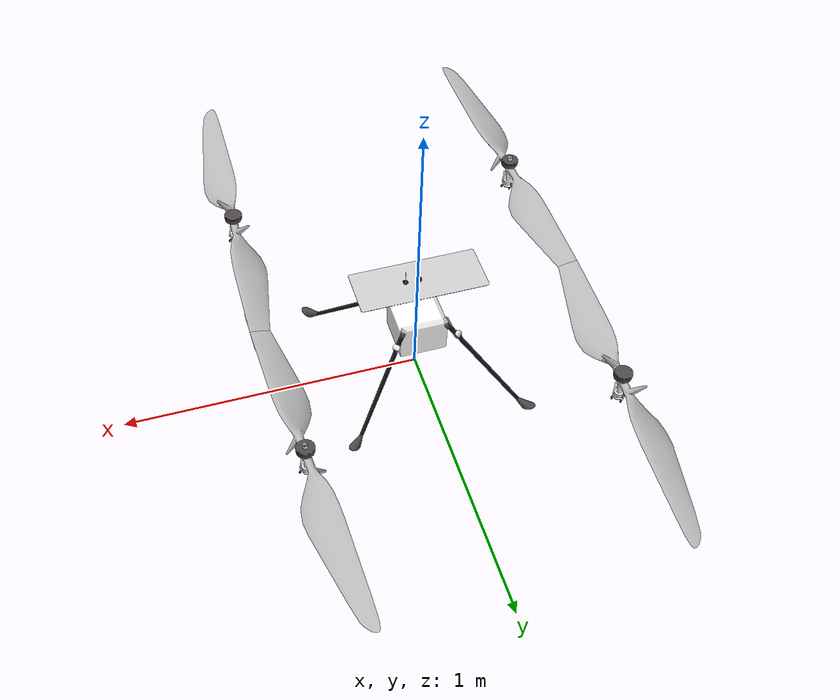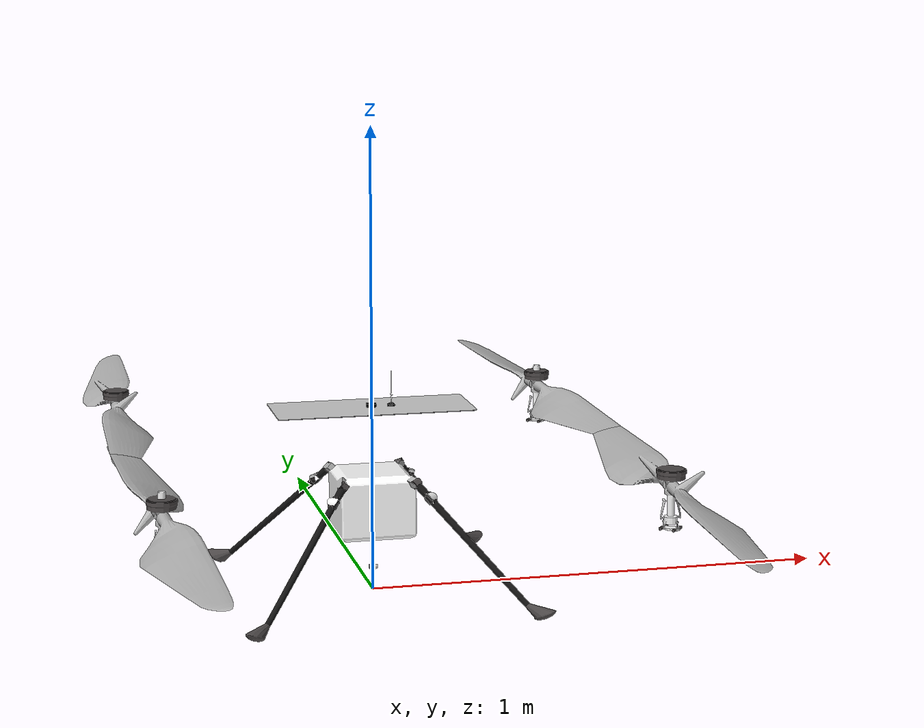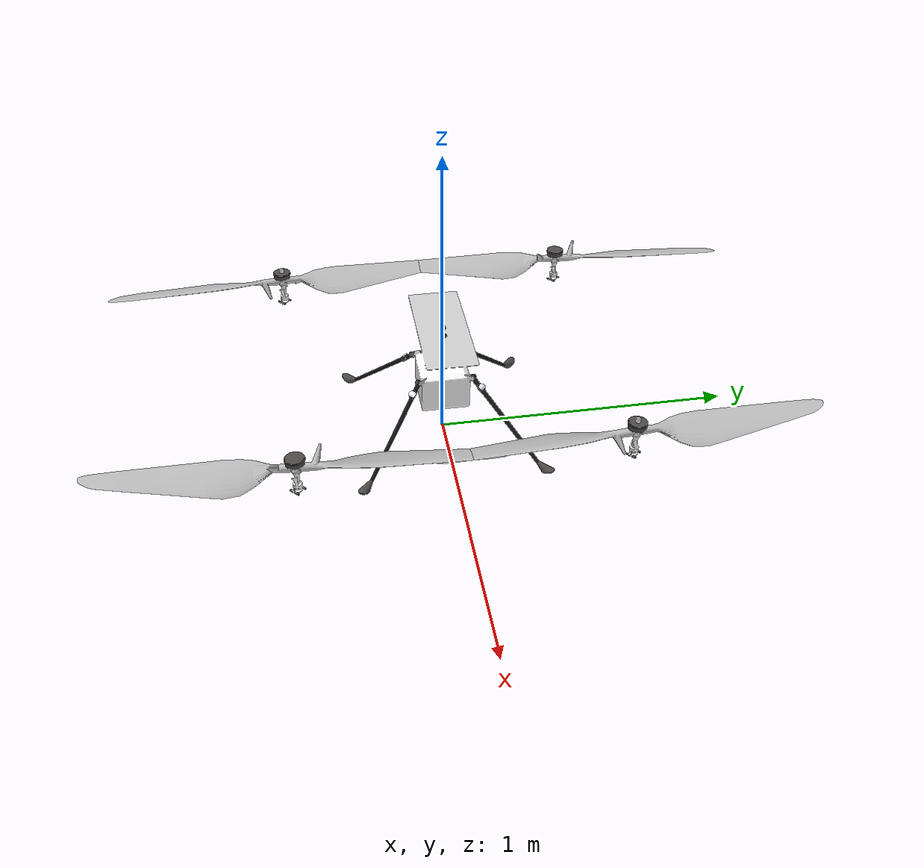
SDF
<?xml version='1.0'?>
<sdf version="1.6" >
  <model name="ingenuity_with_camera">
    <include>
      <uri>model://ingenuity_base</uri>
    </include>

    <link name="cam_link">
      <pose>0 0 -0.1 0 0 0 </pose>
      <inertial>
        <mass>0.01</mass>
        <inertia>
          <ixx>0.001</ixx>
          <iyy>0.001</iyy>
          <izz>0.001</izz>
        </inertia>
      </inertial>
      <visual name='cam_link'>
    	<pose>0 0 0.15 0 1.57 0</pose>
      <!-- 0.15 pare afi ok dar trebuie de vazut-->
    	<geometry>
    		<cylinder>
    			<radius>.005</radius>
    			<length>.018</length>
    		</cylinder>
    	</geometry>
    </visual>
    <sensor name="cam" type="camera" >
      <pose>0 0 0.15 0 1.57 0</pose>
      <camera>
        <horizontal_fov>1.2</horizontal_fov>
        <image>
          <width>640</width>
          <height>480</height>
        </image>
        <clip>
          <near>0.1</near>
          <far>1000</far>
        </clip>
      </camera>
      <always_on>1</always_on>
      <update_rate>30</update_rate>
      <visualize>true</visualize>
      <plugin name="camera_controller" filename="libgazebo_ros_camera.so">
        <always_on>true</always_on>
        <update_rate>30</update_rate>
        <cameraName>webcam</cameraName>
        <imageTopicName>image_raw</imageTopicName>
        <cameraInfoTopicName>camera_info</cameraInfoTopicName>
        <frameName>camera_link</frameName>
      </plugin>
    </sensor>
    </link>
    <joint name="camera_mount" type="fixed">
      <child>cam_link</child>
      <parent>ingenuity::base_link</parent>
      <axis>
        <xyz>0 0 1</xyz>
        <limit>
          <upper>0</upper>
          <lower>0</lower>
        </limit>
      </axis>
    </joint>

<!-- AM ADAUGAT -->

    <joint name="d435_joint" type="fixed">
      <child>d435::base_link</child>
      <parent>ingenuity::base_link</parent>
      <axis>
        <xyz>0 0 0</xyz>
        <limit>
          <upper>0</upper>
          <lower>0</lower>
        </limit>
      </axis>
    </joint>

<!-- PANA AICI -->
    <!-- plugins -->
    <plugin name="rotor_0_blade_1" filename="libLiftDragPlugin.so">
      <a0>0.3</a0>
      <alpha_stall>1.4</alpha_stall>
      <cla>4.2500</cla>
      <cda>0.10</cda>
      <cma>0.00</cma>
      <cla_stall>-0.025</cla_stall>
      <cda_stall>0.0</cda_stall>
      <cma_stall>0.0</cma_stall>
      <area>0.002</area>
      <air_density>1.2041</air_density>
      <cp>0.084 0 0</cp>
      <forward>0 1 0</forward>
      <upward>0 0 1</upward>
      <link_name>ingenuity::rotor_0</link_name>
    </plugin>
    <plugin name="rotor_0_blade_2" filename="libLiftDragPlugin.so">
      <a0>0.3</a0>
      <alpha_stall>1.4</alpha_stall>
      <cla>4.2500</cla>
      <cda>0.10</cda>
      <cma>0.00</cma>
      <cla_stall>-0.025</cla_stall>
      <cda_stall>0.0</cda_stall>
      <cma_stall>0.0</cma_stall>
      <area>0.002</area>
      <air_density>1.2041</air_density>
      <cp>-0.084 0 0</cp>
      <forward>0 -1 0</forward>
      <upward>0 0 1</upward>
      <link_name>ingenuity::rotor_0</link_name>
    </plugin>

    <plugin name="rotor_1_blade_1" filename="libLiftDragPlugin.so">
      <a0>0.3</a0>
      <alpha_stall>1.4</alpha_stall>
      <cla>4.2500</cla>
      <cda>0.10</cda>
      <cma>0.00</cma>
      <cla_stall>-0.025</cla_stall>
      <cda_stall>0.0</cda_stall>
      <cma_stall>0.0</cma_stall>
      <area>0.002</area>
      <air_density>1.2041</air_density>
      <cp>0.084 0 0</cp>
      <forward>0 1 0</forward>
      <upward>0 0 1</upward>
      <link_name>ingenuity::rotor_1</link_name>
    </plugin>
    <plugin name="rotor_1_blade_2" filename="libLiftDragPlugin.so">
      <a0>0.3</a0>
      <alpha_stall>1.4</alpha_stall>
      <cla>4.2500</cla>
      <cda>0.10</cda>
      <cma>0.00</cma>
      <cla_stall>-0.025</cla_stall>
      <cda_stall>0.0</cda_stall>
      <cma_stall>0.0</cma_stall>
      <area>0.002</area>
      <air_density>1.2041</air_density>
      <cp>-0.084 0 0</cp>
      <forward>0 -1 0</forward>
      <upward>0 0 1</upward>
      <link_name>ingenuity::rotor_1</link_name>
    </plugin>

    <plugin name="rotor_2_blade_1" filename="libLiftDragPlugin.so">
      <a0>0.3</a0>
      <alpha_stall>1.4</alpha_stall>
      <cla>4.2500</cla>
      <cda>0.10</cda>
      <cma>0.00</cma>
      <cla_stall>-0.025</cla_stall>
      <cda_stall>0.0</cda_stall>
      <cma_stall>0.0</cma_stall>
      <area>0.002</area>
      <air_density>1.2041</air_density>
      <cp>0.084 0 0</cp>
      <forward>0 -1 0</forward>
      <upward>0 0 1</upward>
      <link_name>ingenuity::rotor_2</link_name>
    </plugin>
    <plugin name="rotor_2_blade_2" filename="libLiftDragPlugin.so">
      <a0>0.3</a0>
      <alpha_stall>1.4</alpha_stall>
      <cla>4.2500</cla>
      <cda>0.10</cda>
      <cma>0.00</cma>
      <cla_stall>-0.025</cla_stall>
      <cda_stall>0.0</cda_stall>
      <cma_stall>0.0</cma_stall>
      <area>0.002</area>
      <air_density>1.2041</air_density>
      <cp>-0.084 0 0</cp>
      <forward>0 1 0</forward>
      <upward>0 0 1</upward>
      <link_name>ingenuity::rotor_2</link_name>
    </plugin>

    <plugin name="rotor_3_blade_1" filename="libLiftDragPlugin.so">
      <a0>0.3</a0>
      <alpha_stall>1.4</alpha_stall>
      <cla>4.2500</cla>
      <cda>0.10</cda>
      <cma>0.00</cma>
      <cla_stall>-0.025</cla_stall>
      <cda_stall>0.0</cda_stall>
      <cma_stall>0.0</cma_stall>
      <area>0.002</area>
      <air_density>1.2041</air_density>
      <cp>0.084 0 0</cp>
      <forward>0 -1 0</forward>
      <upward>0 0 1</upward>
      <link_name>ingenuity::rotor_3</link_name>
    </plugin>
    <plugin name="rotor_3_blade_2" filename="libLiftDragPlugin.so">
      <a0>0.3</a0>
      <alpha_stall>1.4</alpha_stall>
      <cla>4.2500</cla>
      <cda>0.10</cda>
      <cma>0.00</cma>
      <cla_stall>-0.025</cla_stall>
      <cda_stall>0.0</cda_stall>
      <cma_stall>0.0</cma_stall>
      <area>0.002</area>
      <air_density>1.2041</air_density>
      <cp>-0.084 0 0</cp>
      <forward>0 1 0</forward>
      <upward>0 0 1</upward>
      <link_name>ingenuity::rotor_3</link_name>
    </plugin>
    <plugin name="arducopter_plugin" filename="libArduPilotPlugin.so">
      <fdm_addr>127.0.0.1</fdm_addr>
      <fdm_port_in>9002</fdm_port_in>
      <fdm_port_out>9003</fdm_port_out>
      <!--
          Require by APM :
          Only change model and gazebo from XYZ to XY-Z coordinates
      -->
      <modelXYZToAirplaneXForwardZDown>0 0 0 3.141593 0 0</modelXYZToAirplaneXForwardZDown>
      <gazeboXYZToNED>0 0 0 3.141593 0 0</gazeboXYZToNED>
      <imuName>ingenuity::ingenuity/imu_link::imu_sensor</imuName>
      <connectionTimeoutMaxCount>5</connectionTimeoutMaxCount>
      <control channel="0">
      <!--
          incoming control command [0, 1]
          so offset it by 0 to get [0, 1]
          and divide max target by 1.
          offset = 0
          multiplier = 838 max rpm / 1 = 838
        -->
        <type>VELOCITY</type>
        <offset>0</offset>
        <p_gain>0.20</p_gain>
        <i_gain>0</i_gain>
        <d_gain>0</d_gain>
        <i_max>0</i_max>
        <i_min>0</i_min>
        <cmd_max>2.5</cmd_max>
        <cmd_min>-2.5</cmd_min>
        <jointName>ingenuity::rotor_0_joint</jointName>
        <multiplier>838</multiplier>
        <controlVelocitySlowdownSim>1</controlVelocitySlowdownSim>
      </control>
      <control channel="1">
        <type>VELOCITY</type>
        <offset>0</offset>
        <p_gain>0.20</p_gain>
        <i_gain>0</i_gain>
        <d_gain>0</d_gain>
        <i_max>0</i_max>
        <i_min>0</i_min>
        <cmd_max>2.5</cmd_max>
        <cmd_min>-2.5</cmd_min>
        <jointName>ingenuity::rotor_1_joint</jointName>
        <multiplier>838</multiplier>
        <controlVelocitySlowdownSim>1</controlVelocitySlowdownSim>
      </control>
      <control channel="2">
        <type>VELOCITY</type>
        <offset>0</offset>
        <p_gain>0.20</p_gain>
        <i_gain>0</i_gain>
        <d_gain>0</d_gain>
        <i_max>0</i_max>
        <i_min>0</i_min>
        <cmd_max>2.5</cmd_max>
        <cmd_min>-2.5</cmd_min>
        <jointName>ingenuity::rotor_2_joint</jointName>
        <multiplier>-838</multiplier>
        <controlVelocitySlowdownSim>1</controlVelocitySlowdownSim>
      </control>
      <control channel="3">
        <type>VELOCITY</type>
        <offset>0</offset>
        <p_gain>0.20</p_gain>
        <i_gain>0</i_gain>
        <d_gain>0</d_gain>
        <i_max>0</i_max>
        <i_min>0</i_min>
        <cmd_max>2.5</cmd_max>
        <cmd_min>-2.5</cmd_min>
        <jointName>ingenuity::rotor_3_joint</jointName>
        <multiplier>-838</multiplier>
        <controlVelocitySlowdownSim>1</controlVelocitySlowdownSim>
      </control>
    </plugin>

  </model>
</sdf>

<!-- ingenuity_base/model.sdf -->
<sdf version='1.6'>
  <model name='ingenuity'>
    <pose>0 0 0.194 0 0 0</pose>

    <link name='base_link'>
      <velocity_decay>
        <linear>0.0</linear>
        <angular>0.0</angular>
      </velocity_decay>

      <inertial>
        <pose>0 0 0 0 0 0</pose>
        <mass>1.8</mass>
        <inertia>
          <ixx>0.008</ixx>
          <ixy>0</ixy>
          <ixz>0</ixz>
          <iyy>0.015</iyy>
          <iyz>0</iyz>
          <izz>0.017</izz>
        </inertia>
      </inertial>

      <collision name='base_link_collision_fl'>
        <pose>0.295 0.295 -0.169 0 0 0</pose>
        <geometry>
          <box>
            <size>0.05 0.05 0.05</size>
          </box>
        </geometry>
        <surface>
          <contact>
            <ode>
              <max_vel>100.0</max_vel>
              <min_depth>0.001</min_depth>
            </ode>
          </contact>
          <friction>
            <ode>
              <mu>1.0</mu>
              <mu2>1.0</mu2>
            </ode>
          </friction>
        </surface>
      </collision>

      <collision name='base_link_collision_fr'>
        <pose>0.295 -0.295 -0.169 0 0 0</pose>
        <geometry>
          <box>
            <size>0.05 0.05 0.05</size>
          </box>
        </geometry>
        <surface>
          <contact>
            <ode>
              <max_vel>100.0</max_vel>
              <min_depth>0.001</min_depth>
            </ode>
          </contact>
          <friction>
            <ode>
              <mu>1.0</mu>
              <mu2>1.0</mu2>
            </ode>
          </friction>
        </surface>
      </collision>

      <collision name='base_link_collision_br'>
        <pose>-0.295 -0.295 -0.169 0 0 0</pose>
        <geometry>
          <box>
            <size>0.05 0.05 0.05</size>
          </box>
        </geometry>
        <surface>
          <contact>
            <ode>
              <max_vel>100.0</max_vel>
              <min_depth>0.001</min_depth>
            </ode>
          </contact>
          <friction>
            <ode>
              <mu>1.0</mu>
              <mu2>1.0</mu2>
            </ode>
          </friction>
        </surface>
      </collision>

      <collision name='base_link_collision_bl'>
        <pose>-0.295 0.295 -0.169 0 0 0</pose>
        <geometry>
          <box>
            <size>0.05 0.05 0.05</size>
          </box>
        </geometry>
        <surface>
          <contact>
            <ode>
              <max_vel>100.0</max_vel>
              <min_depth>0.001</min_depth>
            </ode>
          </contact>
          <friction>
            <ode>
              <mu>1.0</mu>
              <mu2>1.0</mu2>
            </ode>
          </friction>
        </surface>
      </collision>

      <visual name='base_link_visual'>
        <geometry>
          <mesh>
            <uri>model://ingenuity_base/meshes/ingenuity.dae</uri>
          </mesh>
        </geometry>

      </visual>

    </link>
    <link name='ingenuity/ground_truth/odometry_sensorgt_link'>
      <pose>0 0 0 0 -0 0</pose>
      <inertial>
        <pose>0 0 0 0 -0 0</pose>
        <mass>0.15</mass>
        <inertia>
          <ixx>0.0001</ixx>
          <ixy>0</ixy>
          <ixz>0</ixz>
          <iyy>0.0002</iyy>
          <iyz>0</iyz>
          <izz>0.0002</izz>
        </inertia>
      </inertial>
    </link>
    <joint name='ingenuity/ground_truth/odometry_sensorgt_joint' type='revolute'>
      <child>ingenuity/ground_truth/odometry_sensorgt_link</child>
      <parent>base_link</parent>
      <axis>
        <xyz>0 0 1</xyz>
        <limit>
          <lower>0</lower>
          <upper>0</upper>
          <effort>0</effort>
          <velocity>0</velocity>
        </limit>
        <dynamics>
          <damping>1.0</damping>
        </dynamics>
        <use_parent_model_frame>1</use_parent_model_frame>
      </axis>
      <physics>
        <ode>
          <implicit_spring_damper>1</implicit_spring_damper>
        </ode>
      </physics>
    </joint>
    <link name='ingenuity/imu_link'>
      <inertial>
        <pose>0 0 0 0 0 0</pose>
        <mass>0.15</mass>
        <inertia>
          <ixx>0.00001</ixx>
          <ixy>0</ixy>
          <ixz>0</ixz>
          <iyy>0.00002</iyy>
          <iyz>0</iyz>
          <izz>0.00002</izz>
        </inertia>
      </inertial>
      <sensor name="imu_sensor" type="imu">
        <pose>0 0 0 3.141593 0 0</pose>
        <always_on>1</always_on>
        <update_rate>1000.0</update_rate>
      </sensor>
    </link>
    <joint name='ingenuity/imu_joint' type='revolute'>
      <child>ingenuity/imu_link</child>
      <parent>base_link</parent>
      <axis>
        <xyz>0 0 1</xyz>
        <limit>
          <lower>0</lower>
          <upper>0</upper>
          <effort>0</effort>
          <velocity>0</velocity>
        </limit>
        <dynamics>
          <damping>1.0</damping>
        </dynamics>
        <use_parent_model_frame>1</use_parent_model_frame>
      </axis>
      <physics>
        <ode>
          <implicit_spring_damper>1</implicit_spring_damper>
        </ode>
      </physics>
    </joint>
    <link name='rotor_0'>
      <pose>0.5 -0.5 0.16 0 -0 0</pose>
      <inertial>
        <pose>0 0 0 0 -0 0</pose>
        <mass>0.025</mass>
        <!-- lasam asa pana cand-->
        <inertia>
          <ixx>9.75e-06</ixx>
          <ixy>0</ixy>
          <ixz>0</ixz>
          <iyy>0.000166704</iyy>
          <iyz>0</iyz>
          <izz>0.000167604</izz>
          <!--trebuie de calculat-->
        </inertia>
      </inertial>
      <collision name='rotor_0_collision'>
        <pose>0 0 0 0 -0 0</pose>
        <geometry>
          <cylinder>
            <length>0.1</length>
            <radius>0.6</radius>
          </cylinder>
        </geometry>
        <surface>
          <contact>
            <ode/>
          </contact>
          <friction>
            <ode/>
          </friction>
        </surface>
      </collision>
      <visual name='rotor_0_visual'>
        <pose>0 0 0 0 -0 0</pose>
        <geometry>
          <mesh>
            <scale>1 1 1</scale>
            <uri>model://ingenuity_base/meshes/ingenuity_prop_ccw.dae</uri>
          </mesh>
        </geometry>
      </visual>
      <gravity>1</gravity>
      <velocity_decay/>
      <self_collide>0</self_collide>
    </link>
    <joint name='rotor_0_joint' type='revolute'>
      <child>rotor_0</child>
      <parent>base_link</parent>
      <axis>
        <xyz>0 0 1</xyz>
        <limit>
          <lower>-1e+16</lower>
          <upper>1e+16</upper>
        </limit>
        <dynamics>
          <damping>0.004</damping>
        </dynamics>
        <use_parent_model_frame>1</use_parent_model_frame>
      </axis>
      <physics>
        <ode>
          <implicit_spring_damper>1</implicit_spring_damper>
        </ode>
      </physics>
    </joint>

    <link name='rotor_1'>
      <pose>-0.5 0.5 0.16 0 -0 0</pose>
      <inertial>
        <pose>0 0 0 0 -0 0</pose>
        <mass>0.025</mass>
        <inertia>
          <ixx>9.75e-06</ixx>
          <ixy>0</ixy>
          <ixz>0</ixz>
          <iyy>0.000166704</iyy>
          <iyz>0</iyz>
          <izz>0.000167604</izz>
        </inertia>
      </inertial>
      <collision name='rotor_1_collision'>
        <pose>0 0 0 0 -0 0</pose>
        <geometry>
          <cylinder>
            <length>0.1</length>
            <radius>0.6</radius>
          </cylinder>
        </geometry>
        <surface>
          <contact>
            <ode/>
          </contact>
          <friction>
            <ode/>
          </friction>
        </surface>
      </collision>
      <visual name='rotor_1_visual'>
        <pose>0 0 0 0 -0 0</pose>
        <geometry>
          <mesh>
            <scale>1 1 1</scale>
            <uri>model://ingenuity_base/meshes/ingenuity_prop_ccw.dae</uri>
          </mesh>
        </geometry>
      </visual>
      <gravity>1</gravity>
      <velocity_decay/>
      <self_collide>0</self_collide>
    </link>
    <joint name='rotor_1_joint' type='revolute'>
      <child>rotor_1</child>
      <parent>base_link</parent>
      <axis>
        <xyz>0 0 1</xyz>
        <limit>
          <lower>-1e+16</lower>
          <upper>1e+16</upper>
        </limit>
        <dynamics>
          <damping>0.004</damping>
        </dynamics>
        <use_parent_model_frame>1</use_parent_model_frame>
      </axis>
      <physics>
        <ode>
          <implicit_spring_damper>1</implicit_spring_damper>
        </ode>
      </physics>
    </joint>
    <link name='rotor_2'>
      <pose>0.5 0.5 0.16 0 -0 0</pose>
      <inertial>
        <pose>0 0 0 0 -0 0</pose>
        <mass>0.025</mass>
        <inertia>
          <ixx>9.75e-06</ixx>
          <ixy>0</ixy>
          <ixz>0</ixz>
          <iyy>0.000166704</iyy>
          <iyz>0</iyz>
          <izz>0.000167604</izz>
        </inertia>
      </inertial>
      <collision name='rotor_2_collision'>
        <pose>0 0 0 0 -0 0</pose>
        <geometry>
          <cylinder>
            <length>0.1</length>
            <radius>0.6</radius>
          </cylinder>
        </geometry>
        <surface>
          <contact>
            <ode/>
          </contact>
          <friction>
            <ode/>
          </friction>
        </surface>
      </collision>
      <visual name='rotor_2_visual'>
        <pose>0 0 0 0 -0 0</pose>
        <geometry>
          <mesh>
            <scale>1 1 1</scale>
            <uri>model://ingenuity_base/meshes/ingenuity_prop_cw.dae</uri>
          </mesh>
        </geometry>
      </visual>
      <gravity>1</gravity>
      <velocity_decay/>
      <self_collide>0</self_collide>
    </link>
    <joint name='rotor_2_joint' type='revolute'>
      <child>rotor_2</child>
      <parent>base_link</parent>
      <axis>
        <xyz>0 0 1</xyz>
        <limit>
          <lower>-1e+16</lower>
          <upper>1e+16</upper>
        </limit>
        <dynamics>
          <damping>0.004</damping>
        </dynamics>
        <use_parent_model_frame>1</use_parent_model_frame>
      </axis>
      <physics>
        <ode>
          <implicit_spring_damper>1</implicit_spring_damper>
        </ode>
      </physics>
    </joint>
    <link name='rotor_3'>
      <pose>-0.5 -0.5 0.16 0 -0 0</pose>
      <inertial>
        <pose>0 0 0 0 -0 0</pose>
        <mass>0.025</mass>
        <inertia>
          <ixx>9.75e-06</ixx>
          <ixy>0</ixy>
          <ixz>0</ixz>
          <iyy>0.000166704</iyy>
          <iyz>0</iyz>
          <izz>0.000167604</izz>
        </inertia>
      </inertial>
      <collision name='rotor_3_collision'>
        <pose>0 0 0 0 -0 0</pose>
        <geometry>
          <cylinder>
            <length>0.1</length>
            <radius>0.6</radius>
          </cylinder>
        </geometry>
        <surface>
          <contact>
            <ode/>
          </contact>
          <friction>
            <ode/>
          </friction>
        </surface>
      </collision>
      <visual name='rotor_3_visual'>
        <pose>0 0 0 0 -0 0</pose>
        <geometry>
          <mesh>
            <scale>1 1 1</scale>
            <uri>model://ingenuity_base/meshes/ingenuity_prop_cw.dae</uri>
          </mesh>
        </geometry>
      </visual>
      <gravity>1</gravity>
      <velocity_decay/>
      <self_collide>0</self_collide>
    </link>
    <joint name='rotor_3_joint' type='revolute'>
      <child>rotor_3</child>
      <parent>base_link</parent>
      <axis>
        <xyz>0 0 1</xyz>
        <limit>
          <lower>-1e+16</lower>
          <upper>1e+16</upper>
        </limit>
        <dynamics>
          <damping>0.004</damping>
        </dynamics>
        <use_parent_model_frame>1</use_parent_model_frame>
      </axis>
      <physics>
        <ode>
          <implicit_spring_damper>1</implicit_spring_damper>
        </ode>
      </physics>
    </joint>
    <static>0</static>
  </model>
</sdf>
